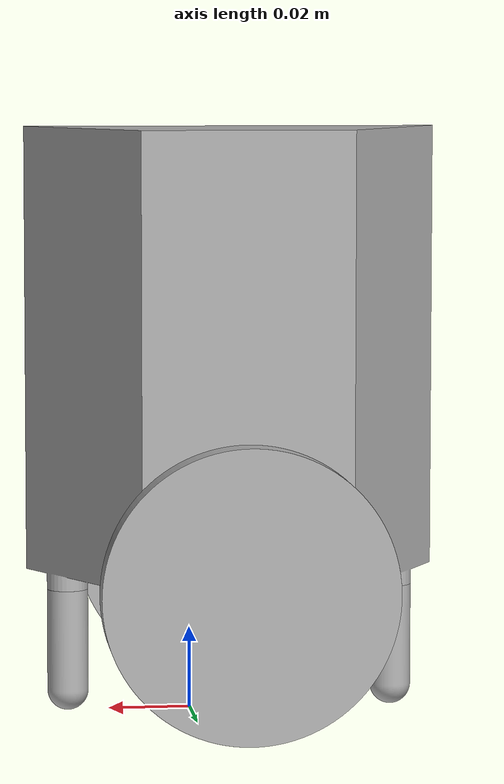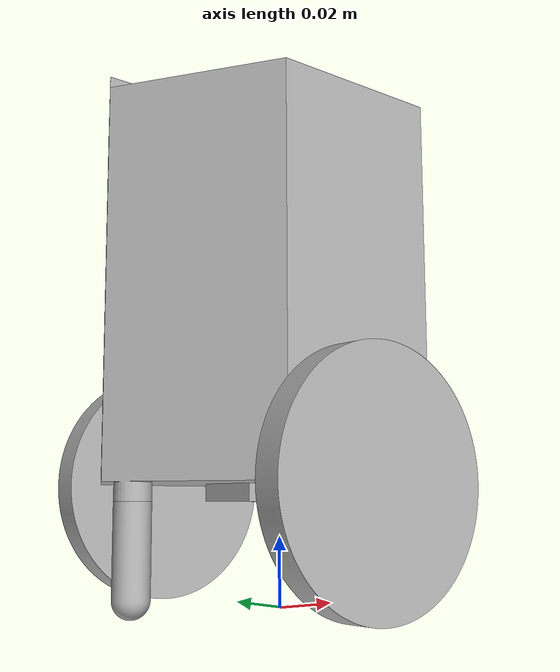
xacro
<?xml version="1.0" ?>
<robot name="autoGarbager" xmlns:xacro="http://www.ros.org/wiki/xacro">

<xacro:include filename="$(find autoGarbager_description)/urdf/materials.xacro" />
<xacro:include filename="$(find autoGarbager_description)/urdf/autoGarbager.trans" />
<xacro:include filename="$(find autoGarbager_description)/urdf/autoGarbager.gazebo" />
<link name="base_link">
  <inertial>
    <origin xyz="-0.010000000000561806 -8.318055197552117e-05 0.07829422189902883" rpy="0 0 0"/>
    <mass value="1.646559856045247"/>
    <inertia ixx="0.003359" iyy="0.00337" izz="0.002576" ixy="0.0" iyz="-9.3e-05" ixz="-0.0"/>
  </inertial>
  <visual>
    <origin xyz="0 0 0" rpy="0 0 0"/>
    <geometry>
      <mesh filename="package://autoGarbager_description/meshes/base_link.stl" scale="0.001 0.001 0.001"/>
    </geometry>
    <material name="silver"/>
  </visual>
  <collision>
    <origin xyz="0 0 0" rpy="0 0 0"/>
    <geometry>
      <mesh filename="package://autoGarbager_description/meshes/base_link.stl" scale="0.001 0.001 0.001"/>
    </geometry>
  </collision>
</link>

<link name="Component7_1">
  <inertial>
    <origin xyz="1.734723475976807e-17 0.003999508075688794 0.0" rpy="0 0 0"/>
    <mass value="0.24168272284066272"/>
    <inertia ixx="7.5e-05" iyy="0.000148" izz="7.5e-05" ixy="-0.0" iyz="0.0" ixz="0.0"/>
  </inertial>
  <visual>
    <origin xyz="0.01 -0.042321 -0.035" rpy="0 0 0"/>
    <geometry>
      <mesh filename="package://autoGarbager_description/meshes/Component7_1.stl" scale="0.001 0.001 0.001"/>
    </geometry>
    <material name="silver"/>
  </visual>
  <collision>
    <origin xyz="0.01 -0.042321 -0.035" rpy="0 0 0"/>
    <geometry>
      <mesh filename="package://autoGarbager_description/meshes/Component7_1.stl" scale="0.001 0.001 0.001"/>
    </geometry>
  </collision>
</link>

<link name="Component6_1">
  <inertial>
    <origin xyz="2.6020852139652106e-17 -0.004000032302755106 0.0" rpy="0 0 0"/>
    <mass value="0.24168272284066264"/>
    <inertia ixx="7.5e-05" iyy="0.000148" izz="7.5e-05" ixy="0.0" iyz="-0.0" ixz="-0.0"/>
  </inertial>
  <visual>
    <origin xyz="0.01 0.044282 -0.035" rpy="0 0 0"/>
    <geometry>
      <mesh filename="package://autoGarbager_description/meshes/Component6_1.stl" scale="0.001 0.001 0.001"/>
    </geometry>
    <material name="silver"/>
  </visual>
  <collision>
    <origin xyz="0.01 0.044282 -0.035" rpy="0 0 0"/>
    <geometry>
      <mesh filename="package://autoGarbager_description/meshes/Component6_1.stl" scale="0.001 0.001 0.001"/>
    </geometry>
  </collision>
</link>

<link name="Component4_1">
  <inertial>
    <origin xyz="2.6020852139652106e-17 2.3788646683997432e-07 -0.0025000000000000022" rpy="0 0 0"/>
    <mass value="0.015699999999999995"/>
    <inertia ixx="1e-06" iyy="1e-06" izz="1e-06" ixy="0.0" iyz="0.0" ixz="-0.0"/>
  </inertial>
  <visual>
    <origin xyz="0.01 0.000981 -0.035" rpy="0 0 0"/>
    <geometry>
      <mesh filename="package://autoGarbager_description/meshes/Component4_1.stl" scale="0.001 0.001 0.001"/>
    </geometry>
    <material name="silver"/>
  </visual>
  <collision>
    <origin xyz="0.01 0.000981 -0.035" rpy="0 0 0"/>
    <geometry>
      <mesh filename="package://autoGarbager_description/meshes/Component4_1.stl" scale="0.001 0.001 0.001"/>
    </geometry>
  </collision>
</link>

<link name="Component9_1">
  <inertial>
    <origin xyz="-7.455193754002387e-10 0.0 -0.014191176470588138" rpy="0 0 0"/>
    <mass value="0.01746856415089791"/>
    <inertia ixx="1e-06" iyy="1e-06" izz="0.0" ixy="0.0" iyz="0.0" ixz="-0.0"/>
  </inertial>
  <visual>
    <origin xyz="0.05 -0.0 -0.03" rpy="0 0 0"/>
    <geometry>
      <mesh filename="package://autoGarbager_description/meshes/Component9_1.stl" scale="0.001 0.001 0.001"/>
    </geometry>
    <material name="silver"/>
  </visual>
  <collision>
    <origin xyz="0.05 -0.0 -0.03" rpy="0 0 0"/>
    <geometry>
      <mesh filename="package://autoGarbager_description/meshes/Component9_1.stl" scale="0.001 0.001 0.001"/>
    </geometry>
  </collision>
</link>

<link name="Component10_1">
  <inertial>
    <origin xyz="4.465735142789029e-10 0.0 -0.014191176470588145" rpy="0 0 0"/>
    <mass value="0.017468564150897918"/>
    <inertia ixx="1e-06" iyy="1e-06" izz="0.0" ixy="0.0" iyz="0.0" ixz="-0.0"/>
  </inertial>
  <visual>
    <origin xyz="-0.03 -0.0 -0.03" rpy="0 0 0"/>
    <geometry>
      <mesh filename="package://autoGarbager_description/meshes/Component10_1.stl" scale="0.001 0.001 0.001"/>
    </geometry>
    <material name="silver"/>
  </visual>
  <collision>
    <origin xyz="-0.03 -0.0 -0.03" rpy="0 0 0"/>
    <geometry>
      <mesh filename="package://autoGarbager_description/meshes/Component10_1.stl" scale="0.001 0.001 0.001"/>
    </geometry>
  </collision>
</link>

<joint name="Revolute 1" type="continuous">
  <origin xyz="-0.01 0.042321 0.035" rpy="0 0 0"/>
  <parent link="base_link"/>
  <child link="Component7_1"/>
  <axis xyz="0.0 1.0 0.0"/>
</joint>

<joint name="Revolute 2" type="continuous">
  <origin xyz="-0.01 -0.044282 0.035" rpy="0 0 0"/>
  <parent link="base_link"/>
  <child link="Component6_1"/>
  <axis xyz="0.0 1.0 0.0"/>
</joint>

<joint name="Rigid 3" type="fixed">
  <origin xyz="-0.01 -0.000981 0.035" rpy="0 0 0"/>
  <parent link="base_link"/>
  <child link="Component4_1"/>
</joint>

<joint name="Rigid 5" type="fixed">
  <origin xyz="-0.05 0.0 0.03" rpy="0 0 0"/>
  <parent link="base_link"/>
  <child link="Component9_1"/>
</joint>

<joint name="Rigid 6" type="fixed">
  <origin xyz="0.03 0.0 0.03" rpy="0 0 0"/>
  <parent link="base_link"/>
  <child link="Component10_1"/>
</joint>

</robot>

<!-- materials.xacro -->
<robot name="autoGarbager" xmlns:xacro="http://www.ros.org/wiki/xacro" >

<material name="silver">
  <color rgba="0.700 0.700 0.700 1.000"/>
</material>

</robot>

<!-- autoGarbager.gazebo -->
<robot name="autoGarbager" xmlns:xacro="http://www.ros.org/wiki/xacro" >

<xacro:property name="body_color" value="Gazebo/Silver" />

<gazebo>
  <plugin name="control" filename="libgazebo_ros_control.so"/>
</gazebo>
<gazebo reference="base_link">
  <material>${body_color}</material>
  <mu1>0.2</mu1>
  <mu2>0.2</mu2>
  <selfCollide>true</selfCollide>
  <gravity>true</gravity>
</gazebo>

<gazebo reference="Component7_1">
  <material>${body_color}</material>
  <mu1>1500</mu1>
  <mu2>1500</mu2>
  <selfCollide>true</selfCollide>
</gazebo>

<gazebo reference="Component6_1">
  <material>${body_color}</material>
  <mu1>1500</mu1>
  <mu2>1500</mu2>
  <selfCollide>true</selfCollide>
</gazebo>

<gazebo reference="Component4_1">
  <material>${body_color}</material>
  <mu1>0.2</mu1>
  <mu2>0.2</mu2>
  <selfCollide>true</selfCollide>
</gazebo>

<gazebo reference="Component9_1">
  <material>${body_color}</material>
  <mu1>0.2</mu1>
  <mu2>0.2</mu2>
  <selfCollide>true</selfCollide>
</gazebo>

<gazebo reference="Component10_1">
  <material>${body_color}</material>
  <mu1>0.2</mu1>
  <mu2>0.2</mu2>
  <selfCollide>true</selfCollide>
</gazebo>
<gazebo>
  <plugin name="differential_drive_controller" filename="libgazebo_ros_diff_drive.so">
    <updateRate>100</updateRate>
    <leftJoint>Revolute 1</leftJoint>
    <rightJoint>Revolute 2</rightJoint>
    <wheelSeparation>0.2</wheelSeparation>
    <wheelDiameter>0.1</wheelDiameter>
    <wheelAcceleration>1.0</wheelAcceleration>
    <wheelTorque>50</wheelTorque>
    <commandTopic>cmd_vel</commandTopic>
    <odometryTopic>odom</odometryTopic>
    <odometryFrame>odom</odometryFrame>
    <robotBaseFrame>base_link</robotBaseFrame>
    <odometrySource>1</odometrySource>
    <publishWheelTF>true</publishWheelTF>
    <publishOdom>true</publishOdom>
    <publishWheelJointState>true</publishWheelJointState>
    <legacyMode>false</legacyMode>
  </plugin>
</gazebo>
</robot>
